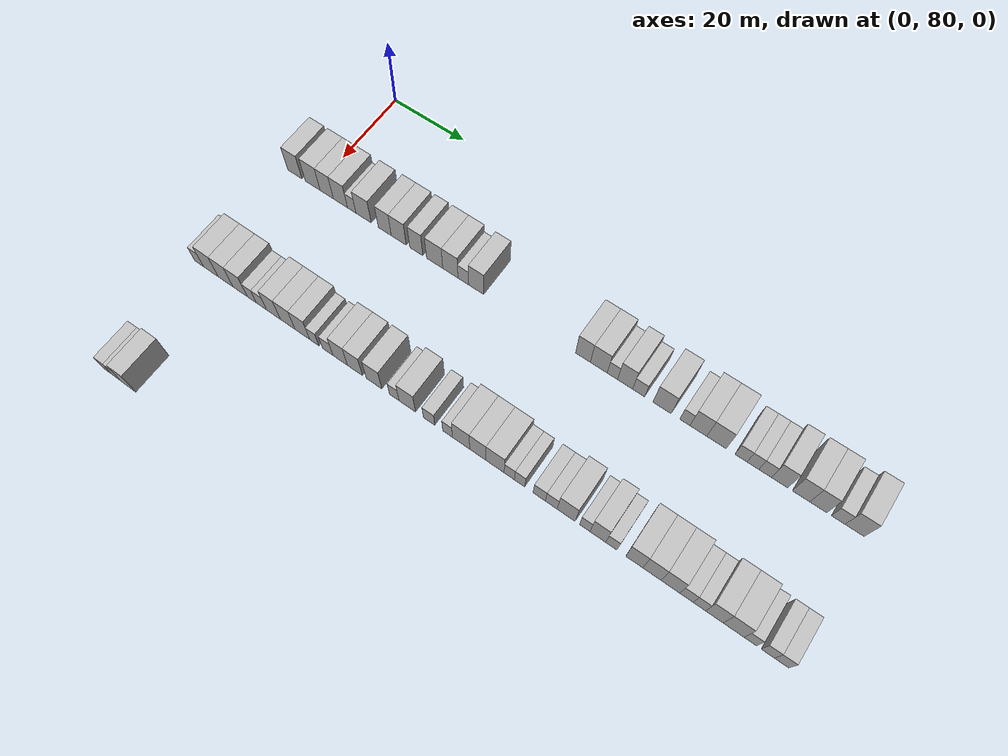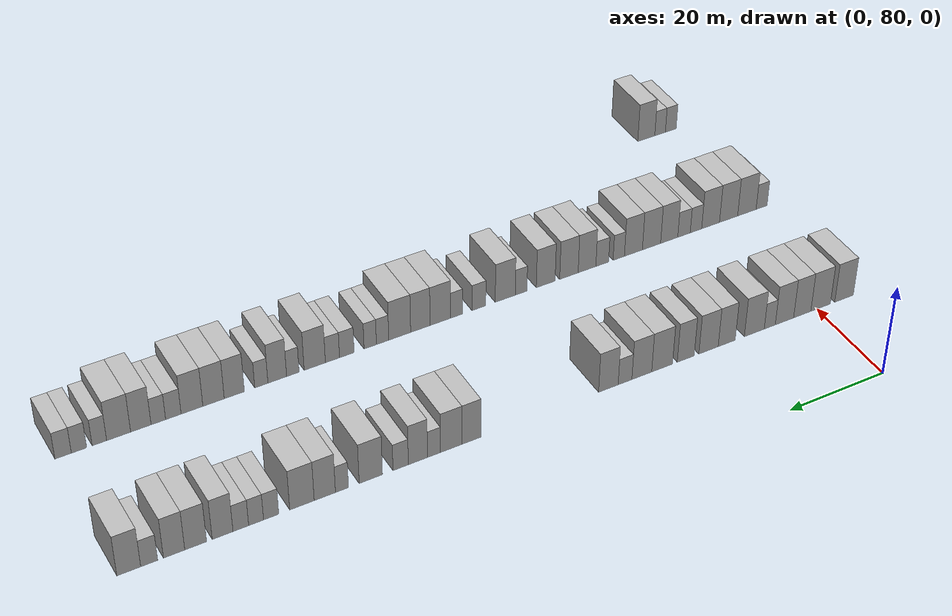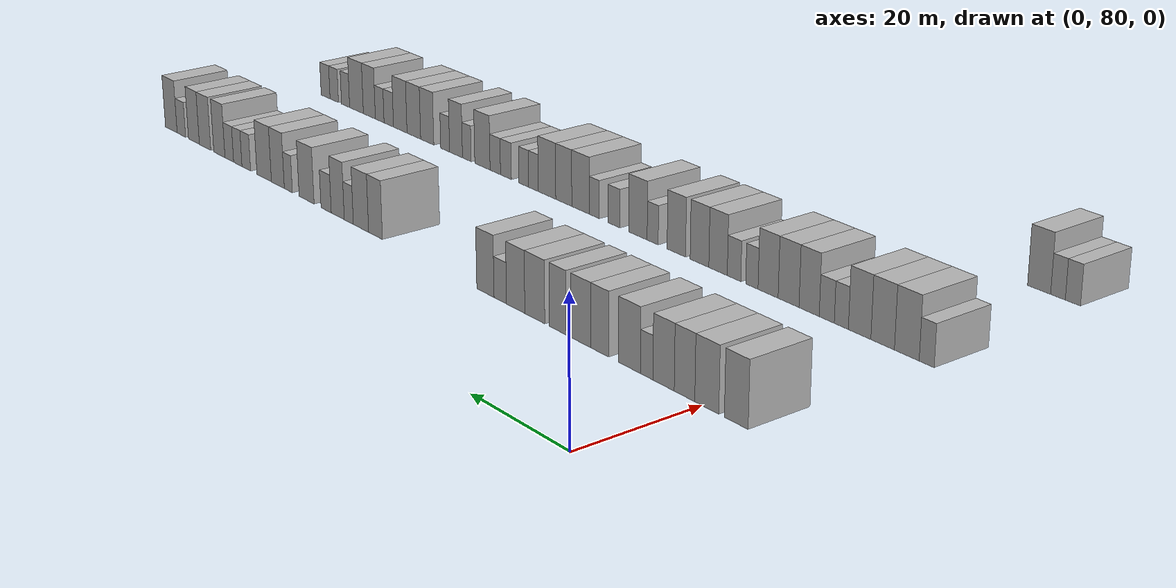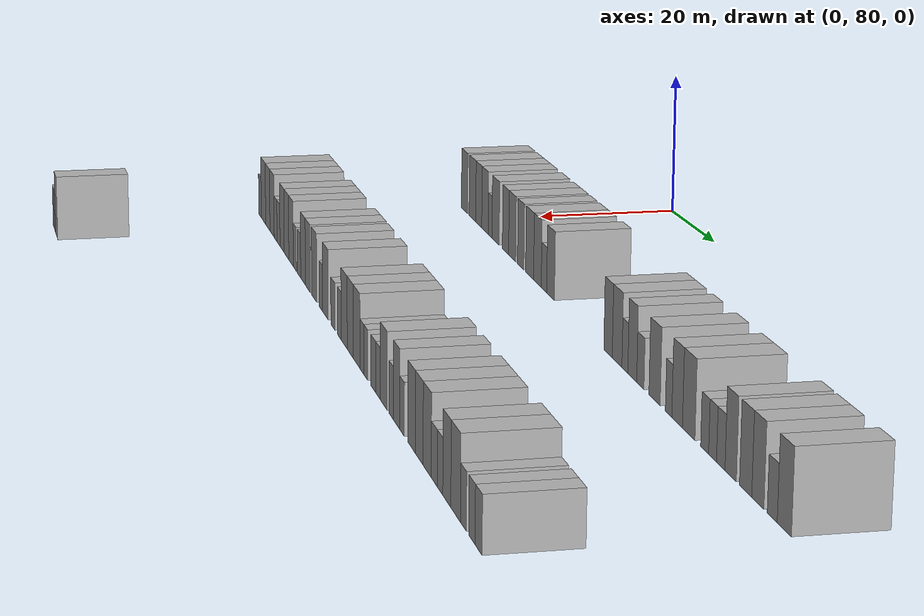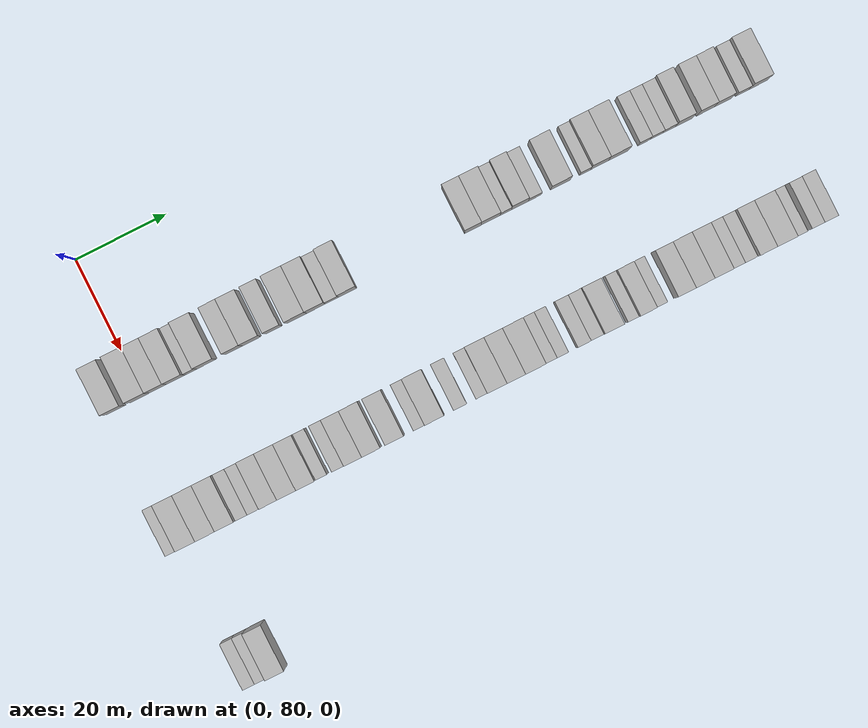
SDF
<sdf version="1.6">
 <world name="default">
  <model name="building_134">
   <static>1</static>
   <pose>25.0000 73.8822 0 0.000000 0.000000 0.000000</pose>
   <link name="link">
    <pose>0 0 4.50 0 0 0</pose>
    <collision name="collision"><geometry><box><size>10.0000 4.2157 9.0000</size></box></geometry></collision>
    <visual name="visual">
     <cast_shadows>0</cast_shadows>
     <geometry><box><size>10.0000 4.2157 9.0000</size></box></geometry>
     <material>
      <script>
       <uri>model://HANNAS_wall/materials/scripts</uri>
       <uri>model://HANNAS_wall/materials/textures</uri>
       <name>vrc/HANNAS_wall</name>
      </script>
     </material>
    </visual>
   </link>
  </model>
  <model name="building_135">
   <static>1</static>
   <pose>25.0000 79.1884 0 0.000000 0.000000 0.000000</pose>
   <link name="link">
    <pose>0 0 4.50 0 0 0</pose>
    <collision name="collision"><geometry><box><size>10.0000 4.3967 9.0000</size></box></geometry></collision>
    <visual name="visual">
     <cast_shadows>0</cast_shadows>
     <geometry><box><size>10.0000 4.3967 9.0000</size></box></geometry>
     <material>
      <script>
       <uri>model://HANNAS_wall/materials/scripts</uri>
       <uri>model://HANNAS_wall/materials/textures</uri>
       <name>vrc/HANNAS_wall</name>
      </script>
     </material>
    </visual>
   </link>
  </model>
  <model name="building_136">
   <static>1</static>
   <pose>25.0000 83.3137 0 0.000000 0.000000 0.000000</pose>
   <link name="link">
    <pose>0 0 4.50 0 0 0</pose>
    <collision name="collision"><geometry><box><size>10.0000 3.8538 9.0000</size></box></geometry></collision>
    <visual name="visual">
     <cast_shadows>0</cast_shadows>
     <geometry><box><size>10.0000 3.8538 9.0000</size></box></geometry>
     <material>
      <script>
       <uri>model://HANNAS_wall/materials/scripts</uri>
       <uri>model://HANNAS_wall/materials/textures</uri>
       <name>vrc/HANNAS_wall</name>
      </script>
     </material>
    </visual>
   </link>
  </model>
  <model name="building_137">
   <static>1</static>
   <pose>25.0000 87.2811 0 0.000000 0.000000 0.000000</pose>
   <link name="link">
    <pose>0 0 4.50 0 0 0</pose>
    <collision name="collision"><geometry><box><size>10.0000 4.0810 9.0000</size></box></geometry></collision>
    <visual name="visual">
     <cast_shadows>0</cast_shadows>
     <geometry><box><size>10.0000 4.0810 9.0000</size></box></geometry>
     <material>
      <script>
       <uri>model://HANNAS_wall/materials/scripts</uri>
       <uri>model://HANNAS_wall/materials/textures</uri>
       <name>vrc/HANNAS_wall</name>
      </script>
     </material>
    </visual>
   </link>
  </model>
  <model name="building_138">
   <static>1</static>
   <pose>25.0000 90.5389 0 0.000000 0.000000 0.000000</pose>
   <link name="link">
    <pose>0 0 3.00 0 0 0</pose>
    <collision name="collision"><geometry><box><size>10.0000 2.4346 6.0000</size></box></geometry></collision>
    <visual name="visual">
     <cast_shadows>0</cast_shadows>
     <geometry><box><size>10.0000 2.4346 6.0000</size></box></geometry>
     <material>
      <script>
       <uri>model://HANNAS_wall/materials/scripts</uri>
       <uri>model://HANNAS_wall/materials/textures</uri>
       <name>vrc/HANNAS_wall</name>
      </script>
     </material>
    </visual>
   </link>
  </model>
  <model name="building_139">
   <static>1</static>
   <pose>25.0000 93.9367 0 0.000000 0.000000 0.000000</pose>
   <link name="link">
    <pose>0 0 4.50 0 0 0</pose>
    <collision name="collision"><geometry><box><size>10.0000 4.3610 9.0000</size></box></geometry></collision>
    <visual name="visual">
     <cast_shadows>0</cast_shadows>
     <geometry><box><size>10.0000 4.3610 9.0000</size></box></geometry>
     <material>
      <script>
       <uri>model://HANNAS_wall/materials/scripts</uri>
       <uri>model://HANNAS_wall/materials/textures</uri>
       <name>vrc/HANNAS_wall</name>
      </script>
     </material>
    </visual>
   </link>
  </model>
  <model name="building_140">
   <static>1</static>
   <pose>25.0000 99.9605 0 0.000000 0.000000 0.000000</pose>
   <link name="link">
    <pose>0 0 4.50 0 0 0</pose>
    <collision name="collision"><geometry><box><size>10.0000 3.6867 9.0000</size></box></geometry></collision>
    <visual name="visual">
     <cast_shadows>0</cast_shadows>
     <geometry><box><size>10.0000 3.6867 9.0000</size></box></geometry>
     <material>
      <script>
       <uri>model://HANNAS_wall/materials/scripts</uri>
       <uri>model://HANNAS_wall/materials/textures</uri>
       <name>vrc/HANNAS_wall</name>
      </script>
     </material>
    </visual>
   </link>
  </model>
  <model name="building_141">
   <static>1</static>
   <pose>25.0000 103.8834 0 0.000000 0.000000 0.000000</pose>
   <link name="link">
    <pose>0 0 4.50 0 0 0</pose>
    <collision name="collision"><geometry><box><size>10.0000 4.1591 9.0000</size></box></geometry></collision>
    <visual name="visual">
     <cast_shadows>0</cast_shadows>
     <geometry><box><size>10.0000 4.1591 9.0000</size></box></geometry>
     <material>
      <script>
       <uri>model://HANNAS_wall/materials/scripts</uri>
       <uri>model://HANNAS_wall/materials/textures</uri>
       <name>vrc/HANNAS_wall</name>
      </script>
     </material>
    </visual>
   </link>
  </model>
  <model name="building_142">
   <static>1</static>
   <pose>25.0000 108.7719 0 0.000000 0.000000 0.000000</pose>
   <link name="link">
    <pose>0 0 4.50 0 0 0</pose>
    <collision name="collision"><geometry><box><size>10.0000 3.6180 9.0000</size></box></geometry></collision>
    <visual name="visual">
     <cast_shadows>0</cast_shadows>
     <geometry><box><size>10.0000 3.6180 9.0000</size></box></geometry>
     <material>
      <script>
       <uri>model://HANNAS_wall/materials/scripts</uri>
       <uri>model://HANNAS_wall/materials/textures</uri>
       <name>vrc/HANNAS_wall</name>
      </script>
     </material>
    </visual>
   </link>
  </model>
  <model name="building_143">
   <static>1</static>
   <pose>25.0000 113.7860 0 0.000000 0.000000 0.000000</pose>
   <link name="link">
    <pose>0 0 4.50 0 0 0</pose>
    <collision name="collision"><geometry><box><size>10.0000 4.4102 9.0000</size></box></geometry></collision>
    <visual name="visual">
     <cast_shadows>0</cast_shadows>
     <geometry><box><size>10.0000 4.4102 9.0000</size></box></geometry>
     <material>
      <script>
       <uri>model://HANNAS_wall/materials/scripts</uri>
       <uri>model://HANNAS_wall/materials/textures</uri>
       <name>vrc/HANNAS_wall</name>
      </script>
     </material>
    </visual>
   </link>
  </model>
  <model name="building_144">
   <static>1</static>
   <pose>25.0000 118.0637 0 0.000000 0.000000 0.000000</pose>
   <link name="link">
    <pose>0 0 4.50 0 0 0</pose>
    <collision name="collision"><geometry><box><size>10.0000 4.1452 9.0000</size></box></geometry></collision>
    <visual name="visual">
     <cast_shadows>0</cast_shadows>
     <geometry><box><size>10.0000 4.1452 9.0000</size></box></geometry>
     <material>
      <script>
       <uri>model://HANNAS_wall/materials/scripts</uri>
       <uri>model://HANNAS_wall/materials/textures</uri>
       <name>vrc/HANNAS_wall</name>
      </script>
     </material>
    </visual>
   </link>
  </model>
  <model name="building_145">
   <static>1</static>
   <pose>25.0000 121.5689 0 0.000000 0.000000 0.000000</pose>
   <link name="link">
    <pose>0 0 3.00 0 0 0</pose>
    <collision name="collision"><geometry><box><size>10.0000 2.8652 6.0000</size></box></geometry></collision>
    <visual name="visual">
     <cast_shadows>0</cast_shadows>
     <geometry><box><size>10.0000 2.8652 6.0000</size></box></geometry>
     <material>
      <script>
       <uri>model://HANNAS_wall/materials/scripts</uri>
       <uri>model://HANNAS_wall/materials/textures</uri>
       <name>vrc/HANNAS_wall</name>
      </script>
     </material>
    </visual>
   </link>
  </model>
  <model name="building_146">
   <static>1</static>
   <pose>25.0000 125.0213 0 0.000000 0.000000 0.000000</pose>
   <link name="link">
    <pose>0 0 4.50 0 0 0</pose>
    <collision name="collision"><geometry><box><size>10.0000 4.0396 9.0000</size></box></geometry></collision>
    <visual name="visual">
     <cast_shadows>0</cast_shadows>
     <geometry><box><size>10.0000 4.0396 9.0000</size></box></geometry>
     <material>
      <script>
       <uri>model://HANNAS_wall/materials/scripts</uri>
       <uri>model://HANNAS_wall/materials/textures</uri>
       <name>vrc/HANNAS_wall</name>
      </script>
     </material>
    </visual>
   </link>
  </model>
  <model name="building_147">
   <static>1</static>
   <pose>25.0000 152.5909 0 0.000000 0.000000 0.000000</pose>
   <link name="link">
    <pose>0 0 4.50 0 0 0</pose>
    <collision name="collision"><geometry><box><size>10.0000 3.6998 9.0000</size></box></geometry></collision>
    <visual name="visual">
     <cast_shadows>0</cast_shadows>
     <geometry><box><size>10.0000 3.6998 9.0000</size></box></geometry>
     <material>
      <script>
       <uri>model://HANNAS_wall/materials/scripts</uri>
       <uri>model://HANNAS_wall/materials/textures</uri>
       <name>vrc/HANNAS_wall</name>
      </script>
     </material>
    </visual>
   </link>
  </model>
  <model name="building_148">
   <static>1</static>
   <pose>25.0000 156.5300 0 0.000000 0.000000 0.000000</pose>
   <link name="link">
    <pose>0 0 4.50 0 0 0</pose>
    <collision name="collision"><geometry><box><size>10.0000 4.1785 9.0000</size></box></geometry></collision>
    <visual name="visual">
     <cast_shadows>0</cast_shadows>
     <geometry><box><size>10.0000 4.1785 9.0000</size></box></geometry>
     <material>
      <script>
       <uri>model://HANNAS_wall/materials/scripts</uri>
       <uri>model://HANNAS_wall/materials/textures</uri>
       <name>vrc/HANNAS_wall</name>
      </script>
     </material>
    </visual>
   </link>
  </model>
  <model name="building_149">
   <static>1</static>
   <pose>25.0000 159.8756 0 0.000000 0.000000 0.000000</pose>
   <link name="link">
    <pose>0 0 3.00 0 0 0</pose>
    <collision name="collision"><geometry><box><size>10.0000 2.5127 6.0000</size></box></geometry></collision>
    <visual name="visual">
     <cast_shadows>0</cast_shadows>
     <geometry><box><size>10.0000 2.5127 6.0000</size></box></geometry>
     <material>
      <script>
       <uri>model://HANNAS_wall/materials/scripts</uri>
       <uri>model://HANNAS_wall/materials/textures</uri>
       <name>vrc/HANNAS_wall</name>
      </script>
     </material>
    </visual>
   </link>
  </model>
  <model name="building_150">
   <static>1</static>
   <pose>25.0000 162.9716 0 0.000000 0.000000 0.000000</pose>
   <link name="link">
    <pose>0 0 4.50 0 0 0</pose>
    <collision name="collision"><geometry><box><size>10.0000 3.6793 9.0000</size></box></geometry></collision>
    <visual name="visual">
     <cast_shadows>0</cast_shadows>
     <geometry><box><size>10.0000 3.6793 9.0000</size></box></geometry>
     <material>
      <script>
       <uri>model://HANNAS_wall/materials/scripts</uri>
       <uri>model://HANNAS_wall/materials/textures</uri>
       <name>vrc/HANNAS_wall</name>
      </script>
     </material>
    </visual>
   </link>
  </model>
  <model name="building_151">
   <static>1</static>
   <pose>25.0000 166.2762 0 0.000000 0.000000 0.000000</pose>
   <link name="link">
    <pose>0 0 3.00 0 0 0</pose>
    <collision name="collision"><geometry><box><size>10.0000 2.9298 6.0000</size></box></geometry></collision>
    <visual name="visual">
     <cast_shadows>0</cast_shadows>
     <geometry><box><size>10.0000 2.9298 6.0000</size></box></geometry>
     <material>
      <script>
       <uri>model://HANNAS_wall/materials/scripts</uri>
       <uri>model://HANNAS_wall/materials/textures</uri>
       <name>vrc/HANNAS_wall</name>
      </script>
     </material>
    </visual>
   </link>
  </model>
  <model name="building_152">
   <static>1</static>
   <pose>25.0000 171.9374 0 0.000000 0.000000 0.000000</pose>
   <link name="link">
    <pose>0 0 4.50 0 0 0</pose>
    <collision name="collision"><geometry><box><size>10.0000 4.3926 9.0000</size></box></geometry></collision>
    <visual name="visual">
     <cast_shadows>0</cast_shadows>
     <geometry><box><size>10.0000 4.3926 9.0000</size></box></geometry>
     <material>
      <script>
       <uri>model://HANNAS_wall/materials/scripts</uri>
       <uri>model://HANNAS_wall/materials/textures</uri>
       <name>vrc/HANNAS_wall</name>
      </script>
     </material>
    </visual>
   </link>
  </model>
  <model name="building_153">
   <static>1</static>
   <pose>25.0000 177.3494 0 0.000000 0.000000 0.000000</pose>
   <link name="link">
    <pose>0 0 3.00 0 0 0</pose>
    <collision name="collision"><geometry><box><size>10.0000 2.4314 6.0000</size></box></geometry></collision>
    <visual name="visual">
     <cast_shadows>0</cast_shadows>
     <geometry><box><size>10.0000 2.4314 6.0000</size></box></geometry>
     <material>
      <script>
       <uri>model://HANNAS_wall/materials/scripts</uri>
       <uri>model://HANNAS_wall/materials/textures</uri>
       <name>vrc/HANNAS_wall</name>
      </script>
     </material>
    </visual>
   </link>
  </model>
  <model name="building_154">
   <static>1</static>
   <pose>25.0000 180.5337 0 0.000000 0.000000 0.000000</pose>
   <link name="link">
    <pose>0 0 4.50 0 0 0</pose>
    <collision name="collision"><geometry><box><size>10.0000 3.9374 9.0000</size></box></geometry></collision>
    <visual name="visual">
     <cast_shadows>0</cast_shadows>
     <geometry><box><size>10.0000 3.9374 9.0000</size></box></geometry>
     <material>
      <script>
       <uri>model://HANNAS_wall/materials/scripts</uri>
       <uri>model://HANNAS_wall/materials/textures</uri>
       <name>vrc/HANNAS_wall</name>
      </script>
     </material>
    </visual>
   </link>
  </model>
  <model name="building_155">
   <static>1</static>
   <pose>25.0000 184.7524 0 0.000000 0.000000 0.000000</pose>
   <link name="link">
    <pose>0 0 4.50 0 0 0</pose>
    <collision name="collision"><geometry><box><size>10.0000 4.5000 9.0000</size></box></geometry></collision>
    <visual name="visual">
     <cast_shadows>0</cast_shadows>
     <geometry><box><size>10.0000 4.5000 9.0000</size></box></geometry>
     <material>
      <script>
       <uri>model://HANNAS_wall/materials/scripts</uri>
       <uri>model://HANNAS_wall/materials/textures</uri>
       <name>vrc/HANNAS_wall</name>
      </script>
     </material>
    </visual>
   </link>
  </model>
  <model name="building_156">
   <static>1</static>
   <pose>25.0000 190.3842 0 0.000000 0.000000 0.000000</pose>
   <link name="link">
    <pose>0 0 3.00 0 0 0</pose>
    <collision name="collision"><geometry><box><size>10.0000 2.7636 6.0000</size></box></geometry></collision>
    <visual name="visual">
     <cast_shadows>0</cast_shadows>
     <geometry><box><size>10.0000 2.7636 6.0000</size></box></geometry>
     <material>
      <script>
       <uri>model://HANNAS_wall/materials/scripts</uri>
       <uri>model://HANNAS_wall/materials/textures</uri>
       <name>vrc/HANNAS_wall</name>
      </script>
     </material>
    </visual>
   </link>
  </model>
  <model name="building_157">
   <static>1</static>
   <pose>25.0000 193.1097 0 0.000000 0.000000 0.000000</pose>
   <link name="link">
    <pose>0 0 3.00 0 0 0</pose>
    <collision name="collision"><geometry><box><size>10.0000 2.6873 6.0000</size></box></geometry></collision>
    <visual name="visual">
     <cast_shadows>0</cast_shadows>
     <geometry><box><size>10.0000 2.6873 6.0000</size></box></geometry>
     <material>
      <script>
       <uri>model://HANNAS_wall/materials/scripts</uri>
       <uri>model://HANNAS_wall/materials/textures</uri>
       <name>vrc/HANNAS_wall</name>
      </script>
     </material>
    </visual>
   </link>
  </model>
  <model name="building_158">
   <static>1</static>
   <pose>25.0000 195.8601 0 0.000000 0.000000 0.000000</pose>
   <link name="link">
    <pose>0 0 3.00 0 0 0</pose>
    <collision name="collision"><geometry><box><size>10.0000 2.8135 6.0000</size></box></geometry></collision>
    <visual name="visual">
     <cast_shadows>0</cast_shadows>
     <geometry><box><size>10.0000 2.8135 6.0000</size></box></geometry>
     <material>
      <script>
       <uri>model://HANNAS_wall/materials/scripts</uri>
       <uri>model://HANNAS_wall/materials/textures</uri>
       <name>vrc/HANNAS_wall</name>
      </script>
     </material>
    </visual>
   </link>
  </model>
  <model name="building_159">
   <static>1</static>
   <pose>25.0000 199.1167 0 0.000000 0.000000 0.000000</pose>
   <link name="link">
    <pose>0 0 4.50 0 0 0</pose>
    <collision name="collision"><geometry><box><size>10.0000 3.6998 9.0000</size></box></geometry></collision>
    <visual name="visual">
     <cast_shadows>0</cast_shadows>
     <geometry><box><size>10.0000 3.6998 9.0000</size></box></geometry>
     <material>
      <script>
       <uri>model://HANNAS_wall/materials/scripts</uri>
       <uri>model://HANNAS_wall/materials/textures</uri>
       <name>vrc/HANNAS_wall</name>
      </script>
     </material>
    </visual>
   </link>
  </model>
  <model name="building_160">
   <static>1</static>
   <pose>25.0000 203.8977 0 0.000000 0.000000 0.000000</pose>
   <link name="link">
    <pose>0 0 4.50 0 0 0</pose>
    <collision name="collision"><geometry><box><size>10.0000 3.8622 9.0000</size></box></geometry></collision>
    <visual name="visual">
     <cast_shadows>0</cast_shadows>
     <geometry><box><size>10.0000 3.8622 9.0000</size></box></geometry>
     <material>
      <script>
       <uri>model://HANNAS_wall/materials/scripts</uri>
       <uri>model://HANNAS_wall/materials/textures</uri>
       <name>vrc/HANNAS_wall</name>
      </script>
     </material>
    </visual>
   </link>
  </model>
  <model name="building_161">
   <static>1</static>
   <pose>25.0000 207.6937 0 0.000000 0.000000 0.000000</pose>
   <link name="link">
    <pose>0 0 4.50 0 0 0</pose>
    <collision name="collision"><geometry><box><size>10.0000 3.7297 9.0000</size></box></geometry></collision>
    <visual name="visual">
     <cast_shadows>0</cast_shadows>
     <geometry><box><size>10.0000 3.7297 9.0000</size></box></geometry>
     <material>
      <script>
       <uri>model://HANNAS_wall/materials/scripts</uri>
       <uri>model://HANNAS_wall/materials/textures</uri>
       <name>vrc/HANNAS_wall</name>
      </script>
     </material>
    </visual>
   </link>
  </model>
  <model name="building_162">
   <static>1</static>
   <pose>25.0000 212.0370 0 0.000000 0.000000 0.000000</pose>
   <link name="link">
    <pose>0 0 3.00 0 0 0</pose>
    <collision name="collision"><geometry><box><size>10.0000 2.9568 6.0000</size></box></geometry></collision>
    <visual name="visual">
     <cast_shadows>0</cast_shadows>
     <geometry><box><size>10.0000 2.9568 6.0000</size></box></geometry>
     <material>
      <script>
       <uri>model://HANNAS_wall/materials/scripts</uri>
       <uri>model://HANNAS_wall/materials/textures</uri>
       <name>vrc/HANNAS_wall</name>
      </script>
     </material>
    </visual>
   </link>
  </model>
  <model name="building_163">
   <static>1</static>
   <pose>25.0000 215.5739 0 0.000000 0.000000 0.000000</pose>
   <link name="link">
    <pose>0 0 4.50 0 0 0</pose>
    <collision name="collision"><geometry><box><size>10.0000 4.1171 9.0000</size></box></geometry></collision>
    <visual name="visual">
     <cast_shadows>0</cast_shadows>
     <geometry><box><size>10.0000 4.1171 9.0000</size></box></geometry>
     <material>
      <script>
       <uri>model://HANNAS_wall/materials/scripts</uri>
       <uri>model://HANNAS_wall/materials/textures</uri>
       <name>vrc/HANNAS_wall</name>
      </script>
     </material>
    </visual>
   </link>
  </model>
  <model name="building_365">
   <static>1</static>
   <pose>55.0000 71.6479 0 0.000000 0.000000 0.000000</pose>
   <link name="link">
    <pose>0 0 3.00 0 0 0</pose>
    <collision name="collision"><geometry><box><size>10.0000 2.5777 6.0000</size></box></geometry></collision>
    <visual name="visual">
     <cast_shadows>0</cast_shadows>
     <geometry><box><size>10.0000 2.5777 6.0000</size></box></geometry>
     <material>
      <script>
       <uri>model://HANNAS_wall/materials/scripts</uri>
       <uri>model://HANNAS_wall/materials/textures</uri>
       <name>vrc/HANNAS_wall</name>
      </script>
     </material>
    </visual>
   </link>
  </model>
  <model name="building_366">
   <static>1</static>
   <pose>55.0000 75.0991 0 0.000000 0.000000 0.000000</pose>
   <link name="link">
    <pose>0 0 4.50 0 0 0</pose>
    <collision name="collision"><geometry><box><size>10.0000 4.3247 9.0000</size></box></geometry></collision>
    <visual name="visual">
     <cast_shadows>0</cast_shadows>
     <geometry><box><size>10.0000 4.3247 9.0000</size></box></geometry>
     <material>
      <script>
       <uri>model://HANNAS_wall/materials/scripts</uri>
       <uri>model://HANNAS_wall/materials/textures</uri>
       <name>vrc/HANNAS_wall</name>
      </script>
     </material>
    </visual>
   </link>
  </model>
  <model name="building_367">
   <static>1</static>
   <pose>55.0000 79.3734 0 0.000000 0.000000 0.000000</pose>
   <link name="link">
    <pose>0 0 4.50 0 0 0</pose>
    <collision name="collision"><geometry><box><size>10.0000 4.2240 9.0000</size></box></geometry></collision>
    <visual name="visual">
     <cast_shadows>0</cast_shadows>
     <geometry><box><size>10.0000 4.2240 9.0000</size></box></geometry>
     <material>
      <script>
       <uri>model://HANNAS_wall/materials/scripts</uri>
       <uri>model://HANNAS_wall/materials/textures</uri>
       <name>vrc/HANNAS_wall</name>
      </script>
     </material>
    </visual>
   </link>
  </model>
  <model name="building_368">
   <static>1</static>
   <pose>55.0000 83.5434 0 0.000000 0.000000 0.000000</pose>
   <link name="link">
    <pose>0 0 4.50 0 0 0</pose>
    <collision name="collision"><geometry><box><size>10.0000 4.1159 9.0000</size></box></geometry></collision>
    <visual name="visual">
     <cast_shadows>0</cast_shadows>
     <geometry><box><size>10.0000 4.1159 9.0000</size></box></geometry>
     <material>
      <script>
       <uri>model://HANNAS_wall/materials/scripts</uri>
       <uri>model://HANNAS_wall/materials/textures</uri>
       <name>vrc/HANNAS_wall</name>
      </script>
     </material>
    </visual>
   </link>
  </model>
  <model name="building_369">
   <static>1</static>
   <pose>55.0000 86.9128 0 0.000000 0.000000 0.000000</pose>
   <link name="link">
    <pose>0 0 3.00 0 0 0</pose>
    <collision name="collision"><geometry><box><size>10.0000 2.6228 6.0000</size></box></geometry></collision>
    <visual name="visual">
     <cast_shadows>0</cast_shadows>
     <geometry><box><size>10.0000 2.6228 6.0000</size></box></geometry>
     <material>
      <script>
       <uri>model://HANNAS_wall/materials/scripts</uri>
       <uri>model://HANNAS_wall/materials/textures</uri>
       <name>vrc/HANNAS_wall</name>
      </script>
     </material>
    </visual>
   </link>
  </model>
  <model name="building_370">
   <static>1</static>
   <pose>55.0000 89.6467 0 0.000000 0.000000 0.000000</pose>
   <link name="link">
    <pose>0 0 3.00 0 0 0</pose>
    <collision name="collision"><geometry><box><size>10.0000 2.8451 6.0000</size></box></geometry></collision>
    <visual name="visual">
     <cast_shadows>0</cast_shadows>
     <geometry><box><size>10.0000 2.8451 6.0000</size></box></geometry>
     <material>
      <script>
       <uri>model://HANNAS_wall/materials/scripts</uri>
       <uri>model://HANNAS_wall/materials/textures</uri>
       <name>vrc/HANNAS_wall</name>
      </script>
     </material>
    </visual>
   </link>
  </model>
  <model name="building_371">
   <static>1</static>
   <pose>55.0000 93.0147 0 0.000000 0.000000 0.000000</pose>
   <link name="link">
    <pose>0 0 4.50 0 0 0</pose>
    <collision name="collision"><geometry><box><size>10.0000 3.8910 9.0000</size></box></geometry></collision>
    <visual name="visual">
     <cast_shadows>0</cast_shadows>
     <geometry><box><size>10.0000 3.8910 9.0000</size></box></geometry>
     <material>
      <script>
       <uri>model://HANNAS_wall/materials/scripts</uri>
       <uri>model://HANNAS_wall/materials/textures</uri>
       <name>vrc/HANNAS_wall</name>
      </script>
     </material>
    </visual>
   </link>
  </model>
  <model name="building_372">
   <static>1</static>
   <pose>55.0000 97.0138 0 0.000000 0.000000 0.000000</pose>
   <link name="link">
    <pose>0 0 4.50 0 0 0</pose>
    <collision name="collision"><geometry><box><size>10.0000 4.1071 9.0000</size></box></geometry></collision>
    <visual name="visual">
     <cast_shadows>0</cast_shadows>
     <geometry><box><size>10.0000 4.1071 9.0000</size></box></geometry>
     <material>
      <script>
       <uri>model://HANNAS_wall/materials/scripts</uri>
       <uri>model://HANNAS_wall/materials/textures</uri>
       <name>vrc/HANNAS_wall</name>
      </script>
     </material>
    </visual>
   </link>
  </model>
  <model name="building_373">
   <static>1</static>
   <pose>55.0000 101.0782 0 0.000000 0.000000 0.000000</pose>
   <link name="link">
    <pose>0 0 4.50 0 0 0</pose>
    <collision name="collision"><geometry><box><size>10.0000 4.0218 9.0000</size></box></geometry></collision>
    <visual name="visual">
     <cast_shadows>0</cast_shadows>
     <geometry><box><size>10.0000 4.0218 9.0000</size></box></geometry>
     <material>
      <script>
       <uri>model://HANNAS_wall/materials/scripts</uri>
       <uri>model://HANNAS_wall/materials/textures</uri>
       <name>vrc/HANNAS_wall</name>
      </script>
     </material>
    </visual>
   </link>
  </model>
  <model name="building_374">
   <static>1</static>
   <pose>55.0000 104.3465 0 0.000000 0.000000 0.000000</pose>
   <link name="link">
    <pose>0 0 3.00 0 0 0</pose>
    <collision name="collision"><geometry><box><size>10.0000 2.5148 6.0000</size></box></geometry></collision>
    <visual name="visual">
     <cast_shadows>0</cast_shadows>
     <geometry><box><size>10.0000 2.5148 6.0000</size></box></geometry>
     <material>
      <script>
       <uri>model://HANNAS_wall/materials/scripts</uri>
       <uri>model://HANNAS_wall/materials/textures</uri>
       <name>vrc/HANNAS_wall</name>
      </script>
     </material>
    </visual>
   </link>
  </model>
  <model name="building_375">
   <static>1</static>
   <pose>55.0000 108.0120 0 0.000000 0.000000 0.000000</pose>
   <link name="link">
    <pose>0 0 3.00 0 0 0</pose>
    <collision name="collision"><geometry><box><size>10.0000 2.8162 6.0000</size></box></geometry></collision>
    <visual name="visual">
     <cast_shadows>0</cast_shadows>
     <geometry><box><size>10.0000 2.8162 6.0000</size></box></geometry>
     <material>
      <script>
       <uri>model://HANNAS_wall/materials/scripts</uri>
       <uri>model://HANNAS_wall/materials/textures</uri>
       <name>vrc/HANNAS_wall</name>
      </script>
     </material>
    </visual>
   </link>
  </model>
  <model name="building_376">
   <static>1</static>
   <pose>55.0000 111.3662 0 0.000000 0.000000 0.000000</pose>
   <link name="link">
    <pose>0 0 4.50 0 0 0</pose>
    <collision name="collision"><geometry><box><size>10.0000 3.8923 9.0000</size></box></geometry></collision>
    <visual name="visual">
     <cast_shadows>0</cast_shadows>
     <geometry><box><size>10.0000 3.8923 9.0000</size></box></geometry>
     <material>
      <script>
       <uri>model://HANNAS_wall/materials/scripts</uri>
       <uri>model://HANNAS_wall/materials/textures</uri>
       <name>vrc/HANNAS_wall</name>
      </script>
     </material>
    </visual>
   </link>
  </model>
  <model name="building_377">
   <static>1</static>
   <pose>55.0000 115.3226 0 0.000000 0.000000 0.000000</pose>
   <link name="link">
    <pose>0 0 4.50 0 0 0</pose>
    <collision name="collision"><geometry><box><size>10.0000 4.0204 9.0000</size></box></geometry></collision>
    <visual name="visual">
     <cast_shadows>0</cast_shadows>
     <geometry><box><size>10.0000 4.0204 9.0000</size></box></geometry>
     <material>
      <script>
       <uri>model://HANNAS_wall/materials/scripts</uri>
       <uri>model://HANNAS_wall/materials/textures</uri>
       <name>vrc/HANNAS_wall</name>
      </script>
     </material>
    </visual>
   </link>
  </model>
  <model name="building_378">
   <static>1</static>
   <pose>55.0000 120.3670 0 0.000000 0.000000 0.000000</pose>
   <link name="link">
    <pose>0 0 4.50 0 0 0</pose>
    <collision name="collision"><geometry><box><size>10.0000 4.0683 9.0000</size></box></geometry></collision>
    <visual name="visual">
     <cast_shadows>0</cast_shadows>
     <geometry><box><size>10.0000 4.0683 9.0000</size></box></geometry>
     <material>
      <script>
       <uri>model://HANNAS_wall/materials/scripts</uri>
       <uri>model://HANNAS_wall/materials/textures</uri>
       <name>vrc/HANNAS_wall</name>
      </script>
     </material>
    </visual>
   </link>
  </model>
  <model name="building_379">
   <static>1</static>
   <pose>55.0000 125.6519 0 0.000000 0.000000 0.000000</pose>
   <link name="link">
    <pose>0 0 3.00 0 0 0</pose>
    <collision name="collision"><geometry><box><size>10.0000 2.5015 6.0000</size></box></geometry></collision>
    <visual name="visual">
     <cast_shadows>0</cast_shadows>
     <geometry><box><size>10.0000 2.5015 6.0000</size></box></geometry>
     <material>
      <script>
       <uri>model://HANNAS_wall/materials/scripts</uri>
       <uri>model://HANNAS_wall/materials/textures</uri>
       <name>vrc/HANNAS_wall</name>
      </script>
     </material>
    </visual>
   </link>
  </model>
  <model name="building_380">
   <static>1</static>
   <pose>55.0000 129.0289 0 0.000000 0.000000 0.000000</pose>
   <link name="link">
    <pose>0 0 4.50 0 0 0</pose>
    <collision name="collision"><geometry><box><size>10.0000 4.2524 9.0000</size></box></geometry></collision>
    <visual name="visual">
     <cast_shadows>0</cast_shadows>
     <geometry><box><size>10.0000 4.2524 9.0000</size></box></geometry>
     <material>
      <script>
       <uri>model://HANNAS_wall/materials/scripts</uri>
       <uri>model://HANNAS_wall/materials/textures</uri>
       <name>vrc/HANNAS_wall</name>
      </script>
     </material>
    </visual>
   </link>
  </model>
  <model name="building_381">
   <static>1</static>
   <pose>55.0000 134.6091 0 0.000000 0.000000 0.000000</pose>
   <link name="link">
    <pose>0 0 3.00 0 0 0</pose>
    <collision name="collision"><geometry><box><size>10.0000 2.9080 6.0000</size></box></geometry></collision>
    <visual name="visual">
     <cast_shadows>0</cast_shadows>
     <geometry><box><size>10.0000 2.9080 6.0000</size></box></geometry>
     <material>
      <script>
       <uri>model://HANNAS_wall/materials/scripts</uri>
       <uri>model://HANNAS_wall/materials/textures</uri>
       <name>vrc/HANNAS_wall</name>
      </script>
     </material>
    </visual>
   </link>
  </model>
  <model name="building_382">
   <static>1</static>
   <pose>55.0000 139.2892 0 0.000000 0.000000 0.000000</pose>
   <link name="link">
    <pose>0 0 3.00 0 0 0</pose>
    <collision name="collision"><geometry><box><size>10.0000 2.4522 6.0000</size></box></geometry></collision>
    <visual name="visual">
     <cast_shadows>0</cast_shadows>
     <geometry><box><size>10.0000 2.4522 6.0000</size></box></geometry>
     <material>
      <script>
       <uri>model://HANNAS_wall/materials/scripts</uri>
       <uri>model://HANNAS_wall/materials/textures</uri>
       <name>vrc/HANNAS_wall</name>
      </script>
     </material>
    </visual>
   </link>
  </model>
  <model name="building_383">
   <static>1</static>
   <pose>55.0000 142.6503 0 0.000000 0.000000 0.000000</pose>
   <link name="link">
    <pose>0 0 4.50 0 0 0</pose>
    <collision name="collision"><geometry><box><size>10.0000 4.2700 9.0000</size></box></geometry></collision>
    <visual name="visual">
     <cast_shadows>0</cast_shadows>
     <geometry><box><size>10.0000 4.2700 9.0000</size></box></geometry>
     <material>
      <script>
       <uri>model://HANNAS_wall/materials/scripts</uri>
       <uri>model://HANNAS_wall/materials/textures</uri>
       <name>vrc/HANNAS_wall</name>
      </script>
     </material>
    </visual>
   </link>
  </model>
  <model name="building_384">
   <static>1</static>
   <pose>55.0000 146.7841 0 0.000000 0.000000 0.000000</pose>
   <link name="link">
    <pose>0 0 4.50 0 0 0</pose>
    <collision name="collision"><geometry><box><size>10.0000 3.9978 9.0000</size></box></geometry></collision>
    <visual name="visual">
     <cast_shadows>0</cast_shadows>
     <geometry><box><size>10.0000 3.9978 9.0000</size></box></geometry>
     <material>
      <script>
       <uri>model://HANNAS_wall/materials/scripts</uri>
       <uri>model://HANNAS_wall/materials/textures</uri>
       <name>vrc/HANNAS_wall</name>
      </script>
     </material>
    </visual>
   </link>
  </model>
  <model name="building_385">
   <static>1</static>
   <pose>55.0000 151.0195 0 0.000000 0.000000 0.000000</pose>
   <link name="link">
    <pose>0 0 4.50 0 0 0</pose>
    <collision name="collision"><geometry><box><size>10.0000 4.4730 9.0000</size></box></geometry></collision>
    <visual name="visual">
     <cast_shadows>0</cast_shadows>
     <geometry><box><size>10.0000 4.4730 9.0000</size></box></geometry>
     <material>
      <script>
       <uri>model://HANNAS_wall/materials/scripts</uri>
       <uri>model://HANNAS_wall/materials/textures</uri>
       <name>vrc/HANNAS_wall</name>
      </script>
     </material>
    </visual>
   </link>
  </model>
  <model name="building_386">
   <static>1</static>
   <pose>55.0000 154.5076 0 0.000000 0.000000 0.000000</pose>
   <link name="link">
    <pose>0 0 3.00 0 0 0</pose>
    <collision name="collision"><geometry><box><size>10.0000 2.5032 6.0000</size></box></geometry></collision>
    <visual name="visual">
     <cast_shadows>0</cast_shadows>
     <geometry><box><size>10.0000 2.5032 6.0000</size></box></geometry>
     <material>
      <script>
       <uri>model://HANNAS_wall/materials/scripts</uri>
       <uri>model://HANNAS_wall/materials/textures</uri>
       <name>vrc/HANNAS_wall</name>
      </script>
     </material>
    </visual>
   </link>
  </model>
  <model name="building_387">
   <static>1</static>
   <pose>55.0000 157.0055 0 0.000000 0.000000 0.000000</pose>
   <link name="link">
    <pose>0 0 3.00 0 0 0</pose>
    <collision name="collision"><geometry><box><size>10.0000 2.4926 6.0000</size></box></geometry></collision>
    <visual name="visual">
     <cast_shadows>0</cast_shadows>
     <geometry><box><size>10.0000 2.4926 6.0000</size></box></geometry>
     <material>
      <script>
       <uri>model://HANNAS_wall/materials/scripts</uri>
       <uri>model://HANNAS_wall/materials/textures</uri>
       <name>vrc/HANNAS_wall</name>
      </script>
     </material>
    </visual>
   </link>
  </model>
  <model name="building_388">
   <static>1</static>
   <pose>55.0000 161.7108 0 0.000000 0.000000 0.000000</pose>
   <link name="link">
    <pose>0 0 3.00 0 0 0</pose>
    <collision name="collision"><geometry><box><size>10.0000 2.9178 6.0000</size></box></geometry></collision>
    <visual name="visual">
     <cast_shadows>0</cast_shadows>
     <geometry><box><size>10.0000 2.9178 6.0000</size></box></geometry>
     <material>
      <script>
       <uri>model://HANNAS_wall/materials/scripts</uri>
       <uri>model://HANNAS_wall/materials/textures</uri>
       <name>vrc/HANNAS_wall</name>
      </script>
     </material>
    </visual>
   </link>
  </model>
  <model name="building_389">
   <static>1</static>
   <pose>55.0000 164.5783 0 0.000000 0.000000 0.000000</pose>
   <link name="link">
    <pose>0 0 3.00 0 0 0</pose>
    <collision name="collision"><geometry><box><size>10.0000 2.8172 6.0000</size></box></geometry></collision>
    <visual name="visual">
     <cast_shadows>0</cast_shadows>
     <geometry><box><size>10.0000 2.8172 6.0000</size></box></geometry>
     <material>
      <script>
       <uri>model://HANNAS_wall/materials/scripts</uri>
       <uri>model://HANNAS_wall/materials/textures</uri>
       <name>vrc/HANNAS_wall</name>
      </script>
     </material>
    </visual>
   </link>
  </model>
  <model name="building_390">
   <static>1</static>
   <pose>55.0000 168.0844 0 0.000000 0.000000 0.000000</pose>
   <link name="link">
    <pose>0 0 4.50 0 0 0</pose>
    <collision name="collision"><geometry><box><size>10.0000 4.1950 9.0000</size></box></geometry></collision>
    <visual name="visual">
     <cast_shadows>0</cast_shadows>
     <geometry><box><size>10.0000 4.1950 9.0000</size></box></geometry>
     <material>
      <script>
       <uri>model://HANNAS_wall/materials/scripts</uri>
       <uri>model://HANNAS_wall/materials/textures</uri>
       <name>vrc/HANNAS_wall</name>
      </script>
     </material>
    </visual>
   </link>
  </model>
  <model name="building_391">
   <static>1</static>
   <pose>55.0000 172.4044 0 0.000000 0.000000 0.000000</pose>
   <link name="link">
    <pose>0 0 3.00 0 0 0</pose>
    <collision name="collision"><geometry><box><size>10.0000 2.4451 6.0000</size></box></geometry></collision>
    <visual name="visual">
     <cast_shadows>0</cast_shadows>
     <geometry><box><size>10.0000 2.4451 6.0000</size></box></geometry>
     <material>
      <script>
       <uri>model://HANNAS_wall/materials/scripts</uri>
       <uri>model://HANNAS_wall/materials/textures</uri>
       <name>vrc/HANNAS_wall</name>
      </script>
     </material>
    </visual>
   </link>
  </model>
  <model name="building_392">
   <static>1</static>
   <pose>55.0000 175.4476 0 0.000000 0.000000 0.000000</pose>
   <link name="link">
    <pose>0 0 4.50 0 0 0</pose>
    <collision name="collision"><geometry><box><size>10.0000 3.6412 9.0000</size></box></geometry></collision>
    <visual name="visual">
     <cast_shadows>0</cast_shadows>
     <geometry><box><size>10.0000 3.6412 9.0000</size></box></geometry>
     <material>
      <script>
       <uri>model://HANNAS_wall/materials/scripts</uri>
       <uri>model://HANNAS_wall/materials/textures</uri>
       <name>vrc/HANNAS_wall</name>
      </script>
     </material>
    </visual>
   </link>
  </model>
  <model name="building_393">
   <static>1</static>
   <pose>55.0000 178.5429 0 0.000000 0.000000 0.000000</pose>
   <link name="link">
    <pose>0 0 3.00 0 0 0</pose>
    <collision name="collision"><geometry><box><size>10.0000 2.5494 6.0000</size></box></geometry></collision>
    <visual name="visual">
     <cast_shadows>0</cast_shadows>
     <geometry><box><size>10.0000 2.5494 6.0000</size></box></geometry>
     <material>
      <script>
       <uri>model://HANNAS_wall/materials/scripts</uri>
       <uri>model://HANNAS_wall/materials/textures</uri>
       <name>vrc/HANNAS_wall</name>
      </script>
     </material>
    </visual>
   </link>
  </model>
  <model name="building_394">
   <static>1</static>
   <pose>55.0000 183.7468 0 0.000000 0.000000 0.000000</pose>
   <link name="link">
    <pose>0 0 4.50 0 0 0</pose>
    <collision name="collision"><geometry><box><size>10.0000 3.8584 9.0000</size></box></geometry></collision>
    <visual name="visual">
     <cast_shadows>0</cast_shadows>
     <geometry><box><size>10.0000 3.8584 9.0000</size></box></geometry>
     <material>
      <script>
       <uri>model://HANNAS_wall/materials/scripts</uri>
       <uri>model://HANNAS_wall/materials/textures</uri>
       <name>vrc/HANNAS_wall</name>
      </script>
     </material>
    </visual>
   </link>
  </model>
  <model name="building_395">
   <static>1</static>
   <pose>55.0000 187.7148 0 0.000000 0.000000 0.000000</pose>
   <link name="link">
    <pose>0 0 4.50 0 0 0</pose>
    <collision name="collision"><geometry><box><size>10.0000 4.0777 9.0000</size></box></geometry></collision>
    <visual name="visual">
     <cast_shadows>0</cast_shadows>
     <geometry><box><size>10.0000 4.0777 9.0000</size></box></geometry>
     <material>
      <script>
       <uri>model://HANNAS_wall/materials/scripts</uri>
       <uri>model://HANNAS_wall/materials/textures</uri>
       <name>vrc/HANNAS_wall</name>
      </script>
     </material>
    </visual>
   </link>
  </model>
  <model name="building_396">
   <static>1</static>
   <pose>55.0000 191.8071 0 0.000000 0.000000 0.000000</pose>
   <link name="link">
    <pose>0 0 4.50 0 0 0</pose>
    <collision name="collision"><geometry><box><size>10.0000 4.1071 9.0000</size></box></geometry></collision>
    <visual name="visual">
     <cast_shadows>0</cast_shadows>
     <geometry><box><size>10.0000 4.1071 9.0000</size></box></geometry>
     <material>
      <script>
       <uri>model://HANNAS_wall/materials/scripts</uri>
       <uri>model://HANNAS_wall/materials/textures</uri>
       <name>vrc/HANNAS_wall</name>
      </script>
     </material>
    </visual>
   </link>
  </model>
  <model name="building_397">
   <static>1</static>
   <pose>55.0000 195.3163 0 0.000000 0.000000 0.000000</pose>
   <link name="link">
    <pose>0 0 3.00 0 0 0</pose>
    <collision name="collision"><geometry><box><size>10.0000 2.9113 6.0000</size></box></geometry></collision>
    <visual name="visual">
     <cast_shadows>0</cast_shadows>
     <geometry><box><size>10.0000 2.9113 6.0000</size></box></geometry>
     <material>
      <script>
       <uri>model://HANNAS_wall/materials/scripts</uri>
       <uri>model://HANNAS_wall/materials/textures</uri>
       <name>vrc/HANNAS_wall</name>
      </script>
     </material>
    </visual>
   </link>
  </model>
  <model name="building_398">
   <static>1</static>
   <pose>55.0000 198.1252 0 0.000000 0.000000 0.000000</pose>
   <link name="link">
    <pose>0 0 3.00 0 0 0</pose>
    <collision name="collision"><geometry><box><size>10.0000 2.7065 6.0000</size></box></geometry></collision>
    <visual name="visual">
     <cast_shadows>0</cast_shadows>
     <geometry><box><size>10.0000 2.7065 6.0000</size></box></geometry>
     <material>
      <script>
       <uri>model://HANNAS_wall/materials/scripts</uri>
       <uri>model://HANNAS_wall/materials/textures</uri>
       <name>vrc/HANNAS_wall</name>
      </script>
     </material>
    </visual>
   </link>
  </model>
  <model name="building_399">
   <static>1</static>
   <pose>55.0000 201.3729 0 0.000000 0.000000 0.000000</pose>
   <link name="link">
    <pose>0 0 4.50 0 0 0</pose>
    <collision name="collision"><geometry><box><size>10.0000 3.7889 9.0000</size></box></geometry></collision>
    <visual name="visual">
     <cast_shadows>0</cast_shadows>
     <geometry><box><size>10.0000 3.7889 9.0000</size></box></geometry>
     <material>
      <script>
       <uri>model://HANNAS_wall/materials/scripts</uri>
       <uri>model://HANNAS_wall/materials/textures</uri>
       <name>vrc/HANNAS_wall</name>
      </script>
     </material>
    </visual>
   </link>
  </model>
  <model name="building_400">
   <static>1</static>
   <pose>55.0000 205.4727 0 0.000000 0.000000 0.000000</pose>
   <link name="link">
    <pose>0 0 4.50 0 0 0</pose>
    <collision name="collision"><geometry><box><size>10.0000 4.4108 9.0000</size></box></geometry></collision>
    <visual name="visual">
     <cast_shadows>0</cast_shadows>
     <geometry><box><size>10.0000 4.4108 9.0000</size></box></geometry>
     <material>
      <script>
       <uri>model://HANNAS_wall/materials/scripts</uri>
       <uri>model://HANNAS_wall/materials/textures</uri>
       <name>vrc/HANNAS_wall</name>
      </script>
     </material>
    </visual>
   </link>
  </model>
  <model name="building_401">
   <static>1</static>
   <pose>55.0000 208.9999 0 0.000000 0.000000 0.000000</pose>
   <link name="link">
    <pose>0 0 3.00 0 0 0</pose>
    <collision name="collision"><geometry><box><size>10.0000 2.6435 6.0000</size></box></geometry></collision>
    <visual name="visual">
     <cast_shadows>0</cast_shadows>
     <geometry><box><size>10.0000 2.6435 6.0000</size></box></geometry>
     <material>
      <script>
       <uri>model://HANNAS_wall/materials/scripts</uri>
       <uri>model://HANNAS_wall/materials/textures</uri>
       <name>vrc/HANNAS_wall</name>
      </script>
     </material>
    </visual>
   </link>
  </model>
  <model name="building_402">
   <static>1</static>
   <pose>55.0000 212.7096 0 0.000000 0.000000 0.000000</pose>
   <link name="link">
    <pose>0 0 3.00 0 0 0</pose>
    <collision name="collision"><geometry><box><size>10.0000 2.7760 6.0000</size></box></geometry></collision>
    <visual name="visual">
     <cast_shadows>0</cast_shadows>
     <geometry><box><size>10.0000 2.7760 6.0000</size></box></geometry>
     <material>
      <script>
       <uri>model://HANNAS_wall/materials/scripts</uri>
       <uri>model://HANNAS_wall/materials/textures</uri>
       <name>vrc/HANNAS_wall</name>
      </script>
     </material>
    </visual>
   </link>
  </model>
  <model name="building_403">
   <static>1</static>
   <pose>55.0000 215.5804 0 0.000000 0.000000 0.000000</pose>
   <link name="link">
    <pose>0 0 3.00 0 0 0</pose>
    <collision name="collision"><geometry><box><size>10.0000 2.9654 6.0000</size></box></geometry></collision>
    <visual name="visual">
     <cast_shadows>0</cast_shadows>
     <geometry><box><size>10.0000 2.9654 6.0000</size></box></geometry>
     <material>
      <script>
       <uri>model://HANNAS_wall/materials/scripts</uri>
       <uri>model://HANNAS_wall/materials/textures</uri>
       <name>vrc/HANNAS_wall</name>
      </script>
     </material>
    </visual>
   </link>
  </model>
  <model name="building_594">
   <static>1</static>
   <pose>85.0000 73.3471 0 0.000000 0.000000 0.000000</pose>
   <link name="link">
    <pose>0 0 3.00 0 0 0</pose>
    <collision name="collision"><geometry><box><size>10.0000 2.6119 6.0000</size></box></geometry></collision>
    <visual name="visual">
     <cast_shadows>0</cast_shadows>
     <geometry><box><size>10.0000 2.6119 6.0000</size></box></geometry>
     <material>
      <script>
       <uri>model://HANNAS_wall/materials/scripts</uri>
       <uri>model://HANNAS_wall/materials/textures</uri>
       <name>vrc/HANNAS_wall</name>
      </script>
     </material>
    </visual>
   </link>
  </model>
  <model name="building_595">
   <static>1</static>
   <pose>85.0000 75.9310 0 0.000000 0.000000 0.000000</pose>
   <link name="link">
    <pose>0 0 3.00 0 0 0</pose>
    <collision name="collision"><geometry><box><size>10.0000 2.5558 6.0000</size></box></geometry></collision>
    <visual name="visual">
     <cast_shadows>0</cast_shadows>
     <geometry><box><size>10.0000 2.5558 6.0000</size></box></geometry>
     <material>
      <script>
       <uri>model://HANNAS_wall/materials/scripts</uri>
       <uri>model://HANNAS_wall/materials/textures</uri>
       <name>vrc/HANNAS_wall</name>
      </script>
     </material>
    </visual>
   </link>
  </model>
  <model name="building_596">
   <static>1</static>
   <pose>85.0000 79.2502 0 0.000000 0.000000 0.000000</pose>
   <link name="link">
    <pose>0 0 4.50 0 0 0</pose>
    <collision name="collision"><geometry><box><size>10.0000 4.0827 9.0000</size></box></geometry></collision>
    <visual name="visual">
     <cast_shadows>0</cast_shadows>
     <geometry><box><size>10.0000 4.0827 9.0000</size></box></geometry>
     <material>
      <script>
       <uri>model://HANNAS_wall/materials/scripts</uri>
       <uri>model://HANNAS_wall/materials/textures</uri>
       <name>vrc/HANNAS_wall</name>
      </script>
     </material>
    </visual>
   </link>
  </model>
 </world>
</sdf>
